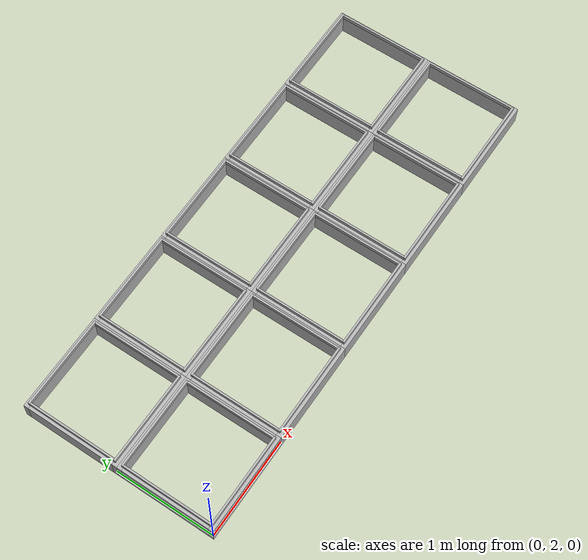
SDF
<sdf version="1.4">
 <model name="Auto Store Frame">
  <static>true</static>
  <link name="cell_02">
   <pose>0.5 2.5 0 0 0 0</pose>
   <collision name="frame_collision_x1">
    <pose>0 -0.475 0 0 0 0</pose>
    <geometry><box><size>1 0.05 0.2 0 0 0</size></box></geometry>
   </collision>
   <collision name="frame_collision_x2">
    <pose>0 0.475 0 0 0 0</pose>
    <geometry><box><size>1 0.05 0.2 0 0 0</size></box></geometry>
   </collision>
   <collision name="frame_collision_y1">
    <pose>-0.475 0 0 0 0 0</pose>
    <geometry><box><size>0.05 0.9 0.2 0 0 0</size></box></geometry>
   </collision>
   <collision name="frame_collision_y2">
    <pose>0.475 0 0 0 0 0</pose>
    <geometry><box><size>0.05 0.9 0.2 0 0 0</size></box></geometry>
   </collision>
   <collision name="guide_collision_x1">
    <pose>0 -0.46 0.12 0 0 0</pose>
    <geometry><box><size>0.94 0.02 0.04 0 0 0</size></box></geometry>
   </collision>
   <collision name="guide_collision_x2">
    <pose>0 0.46 0.12 0 0 0</pose>
    <geometry><box><size>0.94 0.02 0.04 0 0 0</size></box></geometry>
   </collision>
   <collision name="guide_collision_y1">
    <pose>-0.46 0 0.12 0 0 0</pose>
    <geometry><box><size>0.02 0.9 0.04 0 0 0</size></box></geometry>
   </collision>
   <collision name="guide_collision_y2">
    <pose>0.46 0 0.12 0 0 0</pose>
    <geometry><box><size>0.02 0.9 0.04 0 0 0</size></box></geometry>
   </collision>
   <visual name="frame_visual_x1">
    <pose>0 -0.475 0 0 0 0</pose>
    <geometry><box><size>1 0.05 0.2 0 0 0</size></box></geometry>
   </visual>
   <visual name="frame_visual_x2">
    <pose>0 0.475 0 0 0 0</pose>
    <geometry><box><size>1 0.05 0.2 0 0 0</size></box></geometry>
   </visual>
   <visual name="frame_visual_y1">
    <pose>-0.475 0 0 0 0 0</pose>
    <geometry><box><size>0.05 0.9 0.2 0 0 0</size></box></geometry>
   </visual>
   <visual name="frame_visual_y2">
    <pose>0.475 0 0 0 0 0</pose>
    <geometry><box><size>0.05 0.9 0.2 0 0 0</size></box></geometry>
   </visual>
   <visual name="guide_visual_x1">
    <pose>0 -0.46 0.12 0 0 0</pose>
    <geometry><box><size>0.94 0.02 0.04 0 0 0</size></box></geometry>
   </visual>
   <visual name="guide_visual_x2">
    <pose>0 0.46 0.12 0 0 0</pose>
    <geometry><box><size>0.94 0.02 0.04 0 0 0</size></box></geometry>
   </visual>
   <visual name="guide_visual_y1">
    <pose>-0.46 0 0.12 0 0 0</pose>
    <geometry><box><size>0.02 0.9 0.04 0 0 0</size></box></geometry>
   </visual>
   <visual name="guide_visual_y2">
    <pose>0.46 0 0.12 0 0 0</pose>
    <geometry><box><size>0.02 0.9 0.04 0 0 0</size></box></geometry>
   </visual>
  </link>
  <link name="cell_03">
   <pose>0.5 3.5 0 0 0 0</pose>
   <collision name="frame_collision_x1">
    <pose>0 -0.475 0 0 0 0</pose>
    <geometry><box><size>1 0.05 0.2 0 0 0</size></box></geometry>
   </collision>
   <collision name="frame_collision_x2">
    <pose>0 0.475 0 0 0 0</pose>
    <geometry><box><size>1 0.05 0.2 0 0 0</size></box></geometry>
   </collision>
   <collision name="frame_collision_y1">
    <pose>-0.475 0 0 0 0 0</pose>
    <geometry><box><size>0.05 0.9 0.2 0 0 0</size></box></geometry>
   </collision>
   <collision name="frame_collision_y2">
    <pose>0.475 0 0 0 0 0</pose>
    <geometry><box><size>0.05 0.9 0.2 0 0 0</size></box></geometry>
   </collision>
   <collision name="guide_collision_x1">
    <pose>0 -0.46 0.12 0 0 0</pose>
    <geometry><box><size>0.94 0.02 0.04 0 0 0</size></box></geometry>
   </collision>
   <collision name="guide_collision_x2">
    <pose>0 0.46 0.12 0 0 0</pose>
    <geometry><box><size>0.94 0.02 0.04 0 0 0</size></box></geometry>
   </collision>
   <collision name="guide_collision_y1">
    <pose>-0.46 0 0.12 0 0 0</pose>
    <geometry><box><size>0.02 0.9 0.04 0 0 0</size></box></geometry>
   </collision>
   <collision name="guide_collision_y2">
    <pose>0.46 0 0.12 0 0 0</pose>
    <geometry><box><size>0.02 0.9 0.04 0 0 0</size></box></geometry>
   </collision>
   <visual name="frame_visual_x1">
    <pose>0 -0.475 0 0 0 0</pose>
    <geometry><box><size>1 0.05 0.2 0 0 0</size></box></geometry>
   </visual>
   <visual name="frame_visual_x2">
    <pose>0 0.475 0 0 0 0</pose>
    <geometry><box><size>1 0.05 0.2 0 0 0</size></box></geometry>
   </visual>
   <visual name="frame_visual_y1">
    <pose>-0.475 0 0 0 0 0</pose>
    <geometry><box><size>0.05 0.9 0.2 0 0 0</size></box></geometry>
   </visual>
   <visual name="frame_visual_y2">
    <pose>0.475 0 0 0 0 0</pose>
    <geometry><box><size>0.05 0.9 0.2 0 0 0</size></box></geometry>
   </visual>
   <visual name="guide_visual_x1">
    <pose>0 -0.46 0.12 0 0 0</pose>
    <geometry><box><size>0.94 0.02 0.04 0 0 0</size></box></geometry>
   </visual>
   <visual name="guide_visual_x2">
    <pose>0 0.46 0.12 0 0 0</pose>
    <geometry><box><size>0.94 0.02 0.04 0 0 0</size></box></geometry>
   </visual>
   <visual name="guide_visual_y1">
    <pose>-0.46 0 0.12 0 0 0</pose>
    <geometry><box><size>0.02 0.9 0.04 0 0 0</size></box></geometry>
   </visual>
   <visual name="guide_visual_y2">
    <pose>0.46 0 0.12 0 0 0</pose>
    <geometry><box><size>0.02 0.9 0.04 0 0 0</size></box></geometry>
   </visual>
  </link>
  <link name="cell_12">
   <pose>1.5 2.5 0 0 0 0</pose>
   <collision name="frame_collision_x1">
    <pose>0 -0.475 0 0 0 0</pose>
    <geometry><box><size>1 0.05 0.2 0 0 0</size></box></geometry>
   </collision>
   <collision name="frame_collision_x2">
    <pose>0 0.475 0 0 0 0</pose>
    <geometry><box><size>1 0.05 0.2 0 0 0</size></box></geometry>
   </collision>
   <collision name="frame_collision_y1">
    <pose>-0.475 0 0 0 0 0</pose>
    <geometry><box><size>0.05 0.9 0.2 0 0 0</size></box></geometry>
   </collision>
   <collision name="frame_collision_y2">
    <pose>0.475 0 0 0 0 0</pose>
    <geometry><box><size>0.05 0.9 0.2 0 0 0</size></box></geometry>
   </collision>
   <collision name="guide_collision_x1">
    <pose>0 -0.46 0.12 0 0 0</pose>
    <geometry><box><size>0.94 0.02 0.04 0 0 0</size></box></geometry>
   </collision>
   <collision name="guide_collision_x2">
    <pose>0 0.46 0.12 0 0 0</pose>
    <geometry><box><size>0.94 0.02 0.04 0 0 0</size></box></geometry>
   </collision>
   <collision name="guide_collision_y1">
    <pose>-0.46 0 0.12 0 0 0</pose>
    <geometry><box><size>0.02 0.9 0.04 0 0 0</size></box></geometry>
   </collision>
   <collision name="guide_collision_y2">
    <pose>0.46 0 0.12 0 0 0</pose>
    <geometry><box><size>0.02 0.9 0.04 0 0 0</size></box></geometry>
   </collision>
   <visual name="frame_visual_x1">
    <pose>0 -0.475 0 0 0 0</pose>
    <geometry><box><size>1 0.05 0.2 0 0 0</size></box></geometry>
   </visual>
   <visual name="frame_visual_x2">
    <pose>0 0.475 0 0 0 0</pose>
    <geometry><box><size>1 0.05 0.2 0 0 0</size></box></geometry>
   </visual>
   <visual name="frame_visual_y1">
    <pose>-0.475 0 0 0 0 0</pose>
    <geometry><box><size>0.05 0.9 0.2 0 0 0</size></box></geometry>
   </visual>
   <visual name="frame_visual_y2">
    <pose>0.475 0 0 0 0 0</pose>
    <geometry><box><size>0.05 0.9 0.2 0 0 0</size></box></geometry>
   </visual>
   <visual name="guide_visual_x1">
    <pose>0 -0.46 0.12 0 0 0</pose>
    <geometry><box><size>0.94 0.02 0.04 0 0 0</size></box></geometry>
   </visual>
   <visual name="guide_visual_x2">
    <pose>0 0.46 0.12 0 0 0</pose>
    <geometry><box><size>0.94 0.02 0.04 0 0 0</size></box></geometry>
   </visual>
   <visual name="guide_visual_y1">
    <pose>-0.46 0 0.12 0 0 0</pose>
    <geometry><box><size>0.02 0.9 0.04 0 0 0</size></box></geometry>
   </visual>
   <visual name="guide_visual_y2">
    <pose>0.46 0 0.12 0 0 0</pose>
    <geometry><box><size>0.02 0.9 0.04 0 0 0</size></box></geometry>
   </visual>
  </link>
  <link name="cell_13">
   <pose>1.5 3.5 0 0 0 0</pose>
   <collision name="frame_collision_x1">
    <pose>0 -0.475 0 0 0 0</pose>
    <geometry><box><size>1 0.05 0.2 0 0 0</size></box></geometry>
   </collision>
   <collision name="frame_collision_x2">
    <pose>0 0.475 0 0 0 0</pose>
    <geometry><box><size>1 0.05 0.2 0 0 0</size></box></geometry>
   </collision>
   <collision name="frame_collision_y1">
    <pose>-0.475 0 0 0 0 0</pose>
    <geometry><box><size>0.05 0.9 0.2 0 0 0</size></box></geometry>
   </collision>
   <collision name="frame_collision_y2">
    <pose>0.475 0 0 0 0 0</pose>
    <geometry><box><size>0.05 0.9 0.2 0 0 0</size></box></geometry>
   </collision>
   <collision name="guide_collision_x1">
    <pose>0 -0.46 0.12 0 0 0</pose>
    <geometry><box><size>0.94 0.02 0.04 0 0 0</size></box></geometry>
   </collision>
   <collision name="guide_collision_x2">
    <pose>0 0.46 0.12 0 0 0</pose>
    <geometry><box><size>0.94 0.02 0.04 0 0 0</size></box></geometry>
   </collision>
   <collision name="guide_collision_y1">
    <pose>-0.46 0 0.12 0 0 0</pose>
    <geometry><box><size>0.02 0.9 0.04 0 0 0</size></box></geometry>
   </collision>
   <collision name="guide_collision_y2">
    <pose>0.46 0 0.12 0 0 0</pose>
    <geometry><box><size>0.02 0.9 0.04 0 0 0</size></box></geometry>
   </collision>
   <visual name="frame_visual_x1">
    <pose>0 -0.475 0 0 0 0</pose>
    <geometry><box><size>1 0.05 0.2 0 0 0</size></box></geometry>
   </visual>
   <visual name="frame_visual_x2">
    <pose>0 0.475 0 0 0 0</pose>
    <geometry><box><size>1 0.05 0.2 0 0 0</size></box></geometry>
   </visual>
   <visual name="frame_visual_y1">
    <pose>-0.475 0 0 0 0 0</pose>
    <geometry><box><size>0.05 0.9 0.2 0 0 0</size></box></geometry>
   </visual>
   <visual name="frame_visual_y2">
    <pose>0.475 0 0 0 0 0</pose>
    <geometry><box><size>0.05 0.9 0.2 0 0 0</size></box></geometry>
   </visual>
   <visual name="guide_visual_x1">
    <pose>0 -0.46 0.12 0 0 0</pose>
    <geometry><box><size>0.94 0.02 0.04 0 0 0</size></box></geometry>
   </visual>
   <visual name="guide_visual_x2">
    <pose>0 0.46 0.12 0 0 0</pose>
    <geometry><box><size>0.94 0.02 0.04 0 0 0</size></box></geometry>
   </visual>
   <visual name="guide_visual_y1">
    <pose>-0.46 0 0.12 0 0 0</pose>
    <geometry><box><size>0.02 0.9 0.04 0 0 0</size></box></geometry>
   </visual>
   <visual name="guide_visual_y2">
    <pose>0.46 0 0.12 0 0 0</pose>
    <geometry><box><size>0.02 0.9 0.04 0 0 0</size></box></geometry>
   </visual>
  </link>
  <link name="cell_22">
   <pose>2.5 2.5 0 0 0 0</pose>
   <collision name="frame_collision_x1">
    <pose>0 -0.475 0 0 0 0</pose>
    <geometry><box><size>1 0.05 0.2 0 0 0</size></box></geometry>
   </collision>
   <collision name="frame_collision_x2">
    <pose>0 0.475 0 0 0 0</pose>
    <geometry><box><size>1 0.05 0.2 0 0 0</size></box></geometry>
   </collision>
   <collision name="frame_collision_y1">
    <pose>-0.475 0 0 0 0 0</pose>
    <geometry><box><size>0.05 0.9 0.2 0 0 0</size></box></geometry>
   </collision>
   <collision name="frame_collision_y2">
    <pose>0.475 0 0 0 0 0</pose>
    <geometry><box><size>0.05 0.9 0.2 0 0 0</size></box></geometry>
   </collision>
   <collision name="guide_collision_x1">
    <pose>0 -0.46 0.12 0 0 0</pose>
    <geometry><box><size>0.94 0.02 0.04 0 0 0</size></box></geometry>
   </collision>
   <collision name="guide_collision_x2">
    <pose>0 0.46 0.12 0 0 0</pose>
    <geometry><box><size>0.94 0.02 0.04 0 0 0</size></box></geometry>
   </collision>
   <collision name="guide_collision_y1">
    <pose>-0.46 0 0.12 0 0 0</pose>
    <geometry><box><size>0.02 0.9 0.04 0 0 0</size></box></geometry>
   </collision>
   <collision name="guide_collision_y2">
    <pose>0.46 0 0.12 0 0 0</pose>
    <geometry><box><size>0.02 0.9 0.04 0 0 0</size></box></geometry>
   </collision>
   <visual name="frame_visual_x1">
    <pose>0 -0.475 0 0 0 0</pose>
    <geometry><box><size>1 0.05 0.2 0 0 0</size></box></geometry>
   </visual>
   <visual name="frame_visual_x2">
    <pose>0 0.475 0 0 0 0</pose>
    <geometry><box><size>1 0.05 0.2 0 0 0</size></box></geometry>
   </visual>
   <visual name="frame_visual_y1">
    <pose>-0.475 0 0 0 0 0</pose>
    <geometry><box><size>0.05 0.9 0.2 0 0 0</size></box></geometry>
   </visual>
   <visual name="frame_visual_y2">
    <pose>0.475 0 0 0 0 0</pose>
    <geometry><box><size>0.05 0.9 0.2 0 0 0</size></box></geometry>
   </visual>
   <visual name="guide_visual_x1">
    <pose>0 -0.46 0.12 0 0 0</pose>
    <geometry><box><size>0.94 0.02 0.04 0 0 0</size></box></geometry>
   </visual>
   <visual name="guide_visual_x2">
    <pose>0 0.46 0.12 0 0 0</pose>
    <geometry><box><size>0.94 0.02 0.04 0 0 0</size></box></geometry>
   </visual>
   <visual name="guide_visual_y1">
    <pose>-0.46 0 0.12 0 0 0</pose>
    <geometry><box><size>0.02 0.9 0.04 0 0 0</size></box></geometry>
   </visual>
   <visual name="guide_visual_y2">
    <pose>0.46 0 0.12 0 0 0</pose>
    <geometry><box><size>0.02 0.9 0.04 0 0 0</size></box></geometry>
   </visual>
  </link>
  <link name="cell_23">
   <pose>2.5 3.5 0 0 0 0</pose>
   <collision name="frame_collision_x1">
    <pose>0 -0.475 0 0 0 0</pose>
    <geometry><box><size>1 0.05 0.2 0 0 0</size></box></geometry>
   </collision>
   <collision name="frame_collision_x2">
    <pose>0 0.475 0 0 0 0</pose>
    <geometry><box><size>1 0.05 0.2 0 0 0</size></box></geometry>
   </collision>
   <collision name="frame_collision_y1">
    <pose>-0.475 0 0 0 0 0</pose>
    <geometry><box><size>0.05 0.9 0.2 0 0 0</size></box></geometry>
   </collision>
   <collision name="frame_collision_y2">
    <pose>0.475 0 0 0 0 0</pose>
    <geometry><box><size>0.05 0.9 0.2 0 0 0</size></box></geometry>
   </collision>
   <collision name="guide_collision_x1">
    <pose>0 -0.46 0.12 0 0 0</pose>
    <geometry><box><size>0.94 0.02 0.04 0 0 0</size></box></geometry>
   </collision>
   <collision name="guide_collision_x2">
    <pose>0 0.46 0.12 0 0 0</pose>
    <geometry><box><size>0.94 0.02 0.04 0 0 0</size></box></geometry>
   </collision>
   <collision name="guide_collision_y1">
    <pose>-0.46 0 0.12 0 0 0</pose>
    <geometry><box><size>0.02 0.9 0.04 0 0 0</size></box></geometry>
   </collision>
   <collision name="guide_collision_y2">
    <pose>0.46 0 0.12 0 0 0</pose>
    <geometry><box><size>0.02 0.9 0.04 0 0 0</size></box></geometry>
   </collision>
   <visual name="frame_visual_x1">
    <pose>0 -0.475 0 0 0 0</pose>
    <geometry><box><size>1 0.05 0.2 0 0 0</size></box></geometry>
   </visual>
   <visual name="frame_visual_x2">
    <pose>0 0.475 0 0 0 0</pose>
    <geometry><box><size>1 0.05 0.2 0 0 0</size></box></geometry>
   </visual>
   <visual name="frame_visual_y1">
    <pose>-0.475 0 0 0 0 0</pose>
    <geometry><box><size>0.05 0.9 0.2 0 0 0</size></box></geometry>
   </visual>
   <visual name="frame_visual_y2">
    <pose>0.475 0 0 0 0 0</pose>
    <geometry><box><size>0.05 0.9 0.2 0 0 0</size></box></geometry>
   </visual>
   <visual name="guide_visual_x1">
    <pose>0 -0.46 0.12 0 0 0</pose>
    <geometry><box><size>0.94 0.02 0.04 0 0 0</size></box></geometry>
   </visual>
   <visual name="guide_visual_x2">
    <pose>0 0.46 0.12 0 0 0</pose>
    <geometry><box><size>0.94 0.02 0.04 0 0 0</size></box></geometry>
   </visual>
   <visual name="guide_visual_y1">
    <pose>-0.46 0 0.12 0 0 0</pose>
    <geometry><box><size>0.02 0.9 0.04 0 0 0</size></box></geometry>
   </visual>
   <visual name="guide_visual_y2">
    <pose>0.46 0 0.12 0 0 0</pose>
    <geometry><box><size>0.02 0.9 0.04 0 0 0</size></box></geometry>
   </visual>
  </link>
  <link name="cell_32">
   <pose>3.5 2.5 0 0 0 0</pose>
   <collision name="frame_collision_x1">
    <pose>0 -0.475 0 0 0 0</pose>
    <geometry><box><size>1 0.05 0.2 0 0 0</size></box></geometry>
   </collision>
   <collision name="frame_collision_x2">
    <pose>0 0.475 0 0 0 0</pose>
    <geometry><box><size>1 0.05 0.2 0 0 0</size></box></geometry>
   </collision>
   <collision name="frame_collision_y1">
    <pose>-0.475 0 0 0 0 0</pose>
    <geometry><box><size>0.05 0.9 0.2 0 0 0</size></box></geometry>
   </collision>
   <collision name="frame_collision_y2">
    <pose>0.475 0 0 0 0 0</pose>
    <geometry><box><size>0.05 0.9 0.2 0 0 0</size></box></geometry>
   </collision>
   <collision name="guide_collision_x1">
    <pose>0 -0.46 0.12 0 0 0</pose>
    <geometry><box><size>0.94 0.02 0.04 0 0 0</size></box></geometry>
   </collision>
   <collision name="guide_collision_x2">
    <pose>0 0.46 0.12 0 0 0</pose>
    <geometry><box><size>0.94 0.02 0.04 0 0 0</size></box></geometry>
   </collision>
   <collision name="guide_collision_y1">
    <pose>-0.46 0 0.12 0 0 0</pose>
    <geometry><box><size>0.02 0.9 0.04 0 0 0</size></box></geometry>
   </collision>
   <collision name="guide_collision_y2">
    <pose>0.46 0 0.12 0 0 0</pose>
    <geometry><box><size>0.02 0.9 0.04 0 0 0</size></box></geometry>
   </collision>
   <visual name="frame_visual_x1">
    <pose>0 -0.475 0 0 0 0</pose>
    <geometry><box><size>1 0.05 0.2 0 0 0</size></box></geometry>
   </visual>
   <visual name="frame_visual_x2">
    <pose>0 0.475 0 0 0 0</pose>
    <geometry><box><size>1 0.05 0.2 0 0 0</size></box></geometry>
   </visual>
   <visual name="frame_visual_y1">
    <pose>-0.475 0 0 0 0 0</pose>
    <geometry><box><size>0.05 0.9 0.2 0 0 0</size></box></geometry>
   </visual>
   <visual name="frame_visual_y2">
    <pose>0.475 0 0 0 0 0</pose>
    <geometry><box><size>0.05 0.9 0.2 0 0 0</size></box></geometry>
   </visual>
   <visual name="guide_visual_x1">
    <pose>0 -0.46 0.12 0 0 0</pose>
    <geometry><box><size>0.94 0.02 0.04 0 0 0</size></box></geometry>
   </visual>
   <visual name="guide_visual_x2">
    <pose>0 0.46 0.12 0 0 0</pose>
    <geometry><box><size>0.94 0.02 0.04 0 0 0</size></box></geometry>
   </visual>
   <visual name="guide_visual_y1">
    <pose>-0.46 0 0.12 0 0 0</pose>
    <geometry><box><size>0.02 0.9 0.04 0 0 0</size></box></geometry>
   </visual>
   <visual name="guide_visual_y2">
    <pose>0.46 0 0.12 0 0 0</pose>
    <geometry><box><size>0.02 0.9 0.04 0 0 0</size></box></geometry>
   </visual>
  </link>
  <link name="cell_33">
   <pose>3.5 3.5 0 0 0 0</pose>
   <collision name="frame_collision_x1">
    <pose>0 -0.475 0 0 0 0</pose>
    <geometry><box><size>1 0.05 0.2 0 0 0</size></box></geometry>
   </collision>
   <collision name="frame_collision_x2">
    <pose>0 0.475 0 0 0 0</pose>
    <geometry><box><size>1 0.05 0.2 0 0 0</size></box></geometry>
   </collision>
   <collision name="frame_collision_y1">
    <pose>-0.475 0 0 0 0 0</pose>
    <geometry><box><size>0.05 0.9 0.2 0 0 0</size></box></geometry>
   </collision>
   <collision name="frame_collision_y2">
    <pose>0.475 0 0 0 0 0</pose>
    <geometry><box><size>0.05 0.9 0.2 0 0 0</size></box></geometry>
   </collision>
   <collision name="guide_collision_x1">
    <pose>0 -0.46 0.12 0 0 0</pose>
    <geometry><box><size>0.94 0.02 0.04 0 0 0</size></box></geometry>
   </collision>
   <collision name="guide_collision_x2">
    <pose>0 0.46 0.12 0 0 0</pose>
    <geometry><box><size>0.94 0.02 0.04 0 0 0</size></box></geometry>
   </collision>
   <collision name="guide_collision_y1">
    <pose>-0.46 0 0.12 0 0 0</pose>
    <geometry><box><size>0.02 0.9 0.04 0 0 0</size></box></geometry>
   </collision>
   <collision name="guide_collision_y2">
    <pose>0.46 0 0.12 0 0 0</pose>
    <geometry><box><size>0.02 0.9 0.04 0 0 0</size></box></geometry>
   </collision>
   <visual name="frame_visual_x1">
    <pose>0 -0.475 0 0 0 0</pose>
    <geometry><box><size>1 0.05 0.2 0 0 0</size></box></geometry>
   </visual>
   <visual name="frame_visual_x2">
    <pose>0 0.475 0 0 0 0</pose>
    <geometry><box><size>1 0.05 0.2 0 0 0</size></box></geometry>
   </visual>
   <visual name="frame_visual_y1">
    <pose>-0.475 0 0 0 0 0</pose>
    <geometry><box><size>0.05 0.9 0.2 0 0 0</size></box></geometry>
   </visual>
   <visual name="frame_visual_y2">
    <pose>0.475 0 0 0 0 0</pose>
    <geometry><box><size>0.05 0.9 0.2 0 0 0</size></box></geometry>
   </visual>
   <visual name="guide_visual_x1">
    <pose>0 -0.46 0.12 0 0 0</pose>
    <geometry><box><size>0.94 0.02 0.04 0 0 0</size></box></geometry>
   </visual>
   <visual name="guide_visual_x2">
    <pose>0 0.46 0.12 0 0 0</pose>
    <geometry><box><size>0.94 0.02 0.04 0 0 0</size></box></geometry>
   </visual>
   <visual name="guide_visual_y1">
    <pose>-0.46 0 0.12 0 0 0</pose>
    <geometry><box><size>0.02 0.9 0.04 0 0 0</size></box></geometry>
   </visual>
   <visual name="guide_visual_y2">
    <pose>0.46 0 0.12 0 0 0</pose>
    <geometry><box><size>0.02 0.9 0.04 0 0 0</size></box></geometry>
   </visual>
  </link>
  <link name="cell_42">
   <pose>4.5 2.5 0 0 0 0</pose>
   <collision name="frame_collision_x1">
    <pose>0 -0.475 0 0 0 0</pose>
    <geometry><box><size>1 0.05 0.2 0 0 0</size></box></geometry>
   </collision>
   <collision name="frame_collision_x2">
    <pose>0 0.475 0 0 0 0</pose>
    <geometry><box><size>1 0.05 0.2 0 0 0</size></box></geometry>
   </collision>
   <collision name="frame_collision_y1">
    <pose>-0.475 0 0 0 0 0</pose>
    <geometry><box><size>0.05 0.9 0.2 0 0 0</size></box></geometry>
   </collision>
   <collision name="frame_collision_y2">
    <pose>0.475 0 0 0 0 0</pose>
    <geometry><box><size>0.05 0.9 0.2 0 0 0</size></box></geometry>
   </collision>
   <collision name="guide_collision_x1">
    <pose>0 -0.46 0.12 0 0 0</pose>
    <geometry><box><size>0.94 0.02 0.04 0 0 0</size></box></geometry>
   </collision>
   <collision name="guide_collision_x2">
    <pose>0 0.46 0.12 0 0 0</pose>
    <geometry><box><size>0.94 0.02 0.04 0 0 0</size></box></geometry>
   </collision>
   <collision name="guide_collision_y1">
    <pose>-0.46 0 0.12 0 0 0</pose>
    <geometry><box><size>0.02 0.9 0.04 0 0 0</size></box></geometry>
   </collision>
   <collision name="guide_collision_y2">
    <pose>0.46 0 0.12 0 0 0</pose>
    <geometry><box><size>0.02 0.9 0.04 0 0 0</size></box></geometry>
   </collision>
   <visual name="frame_visual_x1">
    <pose>0 -0.475 0 0 0 0</pose>
    <geometry><box><size>1 0.05 0.2 0 0 0</size></box></geometry>
   </visual>
   <visual name="frame_visual_x2">
    <pose>0 0.475 0 0 0 0</pose>
    <geometry><box><size>1 0.05 0.2 0 0 0</size></box></geometry>
   </visual>
   <visual name="frame_visual_y1">
    <pose>-0.475 0 0 0 0 0</pose>
    <geometry><box><size>0.05 0.9 0.2 0 0 0</size></box></geometry>
   </visual>
   <visual name="frame_visual_y2">
    <pose>0.475 0 0 0 0 0</pose>
    <geometry><box><size>0.05 0.9 0.2 0 0 0</size></box></geometry>
   </visual>
   <visual name="guide_visual_x1">
    <pose>0 -0.46 0.12 0 0 0</pose>
    <geometry><box><size>0.94 0.02 0.04 0 0 0</size></box></geometry>
   </visual>
   <visual name="guide_visual_x2">
    <pose>0 0.46 0.12 0 0 0</pose>
    <geometry><box><size>0.94 0.02 0.04 0 0 0</size></box></geometry>
   </visual>
   <visual name="guide_visual_y1">
    <pose>-0.46 0 0.12 0 0 0</pose>
    <geometry><box><size>0.02 0.9 0.04 0 0 0</size></box></geometry>
   </visual>
   <visual name="guide_visual_y2">
    <pose>0.46 0 0.12 0 0 0</pose>
    <geometry><box><size>0.02 0.9 0.04 0 0 0</size></box></geometry>
   </visual>
  </link>
  <link name="cell_43">
   <pose>4.5 3.5 0 0 0 0</pose>
   <collision name="frame_collision_x1">
    <pose>0 -0.475 0 0 0 0</pose>
    <geometry><box><size>1 0.05 0.2 0 0 0</size></box></geometry>
   </collision>
   <collision name="frame_collision_x2">
    <pose>0 0.475 0 0 0 0</pose>
    <geometry><box><size>1 0.05 0.2 0 0 0</size></box></geometry>
   </collision>
   <collision name="frame_collision_y1">
    <pose>-0.475 0 0 0 0 0</pose>
    <geometry><box><size>0.05 0.9 0.2 0 0 0</size></box></geometry>
   </collision>
   <collision name="frame_collision_y2">
    <pose>0.475 0 0 0 0 0</pose>
    <geometry><box><size>0.05 0.9 0.2 0 0 0</size></box></geometry>
   </collision>
   <collision name="guide_collision_x1">
    <pose>0 -0.46 0.12 0 0 0</pose>
    <geometry><box><size>0.94 0.02 0.04 0 0 0</size></box></geometry>
   </collision>
   <collision name="guide_collision_x2">
    <pose>0 0.46 0.12 0 0 0</pose>
    <geometry><box><size>0.94 0.02 0.04 0 0 0</size></box></geometry>
   </collision>
   <collision name="guide_collision_y1">
    <pose>-0.46 0 0.12 0 0 0</pose>
    <geometry><box><size>0.02 0.9 0.04 0 0 0</size></box></geometry>
   </collision>
   <collision name="guide_collision_y2">
    <pose>0.46 0 0.12 0 0 0</pose>
    <geometry><box><size>0.02 0.9 0.04 0 0 0</size></box></geometry>
   </collision>
   <visual name="frame_visual_x1">
    <pose>0 -0.475 0 0 0 0</pose>
    <geometry><box><size>1 0.05 0.2 0 0 0</size></box></geometry>
   </visual>
   <visual name="frame_visual_x2">
    <pose>0 0.475 0 0 0 0</pose>
    <geometry><box><size>1 0.05 0.2 0 0 0</size></box></geometry>
   </visual>
   <visual name="frame_visual_y1">
    <pose>-0.475 0 0 0 0 0</pose>
    <geometry><box><size>0.05 0.9 0.2 0 0 0</size></box></geometry>
   </visual>
   <visual name="frame_visual_y2">
    <pose>0.475 0 0 0 0 0</pose>
    <geometry><box><size>0.05 0.9 0.2 0 0 0</size></box></geometry>
   </visual>
   <visual name="guide_visual_x1">
    <pose>0 -0.46 0.12 0 0 0</pose>
    <geometry><box><size>0.94 0.02 0.04 0 0 0</size></box></geometry>
   </visual>
   <visual name="guide_visual_x2">
    <pose>0 0.46 0.12 0 0 0</pose>
    <geometry><box><size>0.94 0.02 0.04 0 0 0</size></box></geometry>
   </visual>
   <visual name="guide_visual_y1">
    <pose>-0.46 0 0.12 0 0 0</pose>
    <geometry><box><size>0.02 0.9 0.04 0 0 0</size></box></geometry>
   </visual>
   <visual name="guide_visual_y2">
    <pose>0.46 0 0.12 0 0 0</pose>
    <geometry><box><size>0.02 0.9 0.04 0 0 0</size></box></geometry>
   </visual>
  </link>
 </model>
</sdf>
